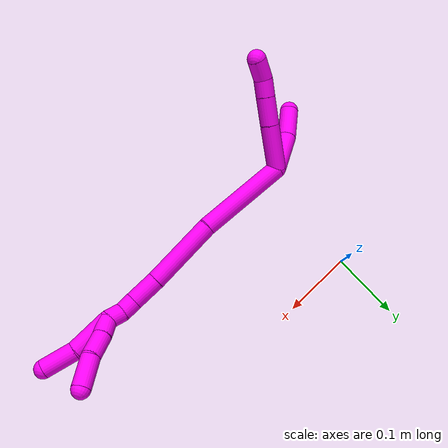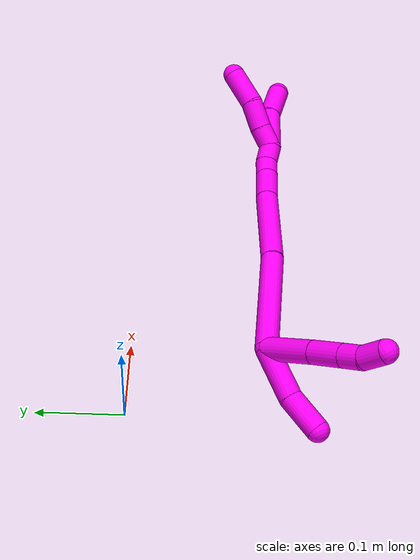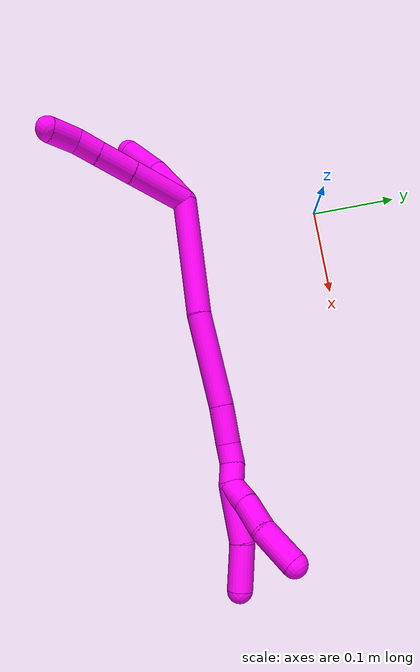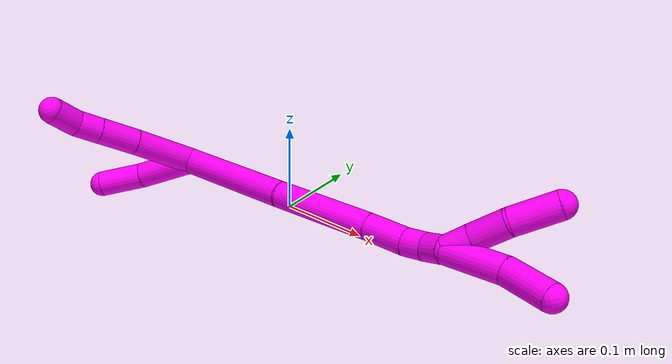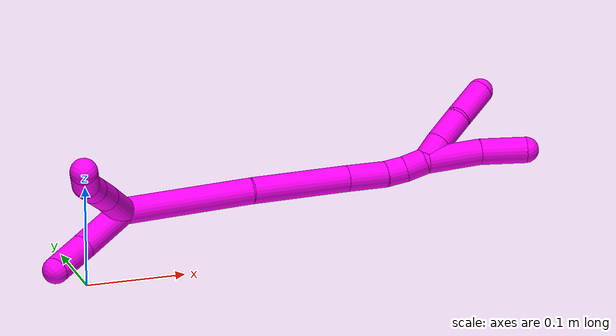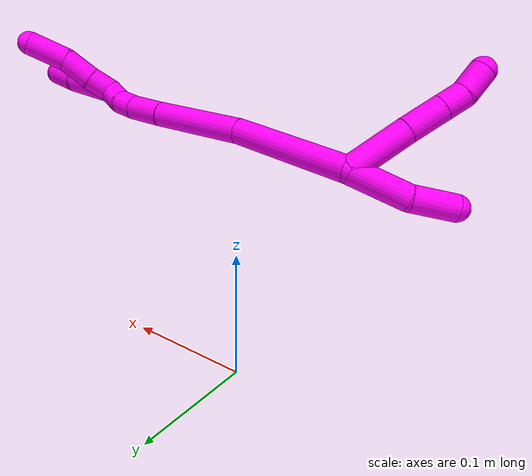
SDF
<sdf version="1.7">
 <world name="default">
  <model name="10">
   <static>0</static>
   <link name="10">
    <collision name="collision-cylinder-e_1_2_8">
     <pose>0.002518 -0.025758 -0.016513 2.14086 0.082107 0.149968</pose>
     <geometry><cylinder><radius>0.0125</radius><length>0.0614</length></cylinder></geometry>
     <surface>
      <friction><ode><mu>1.16</mu><mu2>1.16</mu2><slip1>0</slip1><slip2>0</slip2></ode></friction>
      <contact><ode><kp>1e+06</kp><kd>1</kd><max_vel>0</max_vel><min_depth>0.001</min_depth></ode></contact>
     </surface>
    </collision>
    <visual name="visual-cylinder-e_1_2_8">
     <pose>0.002518 -0.025758 -0.016513 2.14086 0.082107 0.149968</pose>
     <geometry><cylinder><radius>0.0125</radius><length>0.0614</length></cylinder></geometry>
     <material><ambient>1 0 0.964706 1</ambient></material>
    </visual>
    <collision name="collision-cylinder-e_2_8_9">
     <pose>0.006652 -0.066887 -0.043552 2.1713 0.086548 0.163909</pose>
     <geometry><cylinder><radius>0.0125</radius><length>0.0374</length></cylinder></geometry>
     <surface>
      <friction><ode><mu>1.16</mu><mu2>1.16</mu2><slip1>0</slip1><slip2>0</slip2></ode></friction>
      <contact><ode><kp>1e+06</kp><kd>1</kd><max_vel>0</max_vel><min_depth>0.001</min_depth></ode></contact>
     </surface>
    </collision>
    <visual name="visual-cylinder-e_2_8_9">
     <pose>0.006652 -0.066887 -0.043552 2.1713 0.086548 0.163909</pose>
     <geometry><cylinder><radius>0.0125</radius><length>0.0374</length></cylinder></geometry>
     <material><ambient>1 0 0.964706 1</ambient></material>
    </visual>
    <collision name="collision-cylinder-e_3_9_10">
     <pose>0.009205 -0.091829 -0.060703 2.17617 0.080273 0.152958</pose>
     <geometry><cylinder><radius>0.0125</radius><length>0.023354</length></cylinder></geometry>
     <surface>
      <friction><ode><mu>1.16</mu><mu2>1.16</mu2><slip1>0</slip1><slip2>0</slip2></ode></friction>
      <contact><ode><kp>1e+06</kp><kd>1</kd><max_vel>0</max_vel><min_depth>0.001</min_depth></ode></contact>
     </surface>
    </collision>
    <visual name="visual-cylinder-e_3_9_10">
     <pose>0.009205 -0.091829 -0.060703 2.17617 0.080273 0.152958</pose>
     <geometry><cylinder><radius>0.0125</radius><length>0.023354</length></cylinder></geometry>
     <material><ambient>1 0 0.964706 1</ambient></material>
    </visual>
    <collision name="collision-cylinder-e_4_10_6">
     <pose>0.011786 -0.114673 -0.071196 1.85445 0.118436 0.157749</pose>
     <geometry><cylinder><radius>0.0125</radius><length>0.027846</length></cylinder></geometry>
     <surface>
      <friction><ode><mu>1.16</mu><mu2>1.16</mu2><slip1>0</slip1><slip2>0</slip2></ode></friction>
      <contact><ode><kp>1e+06</kp><kd>1</kd><max_vel>0</max_vel><min_depth>0.001</min_depth></ode></contact>
     </surface>
    </collision>
    <visual name="visual-cylinder-e_4_10_6">
     <pose>0.011786 -0.114673 -0.071196 1.85445 0.118436 0.157749</pose>
     <geometry><cylinder><radius>0.0125</radius><length>0.027846</length></cylinder></geometry>
     <material><ambient>1 0 0.964706 1</ambient></material>
    </visual>
    <collision name="collision-cylinder-e_1_2_11">
     <pose>0.000666 0.000795 -0.028468 -3.11366 0.023391 -1.39433</pose>
     <geometry><cylinder><radius>0.0125</radius><length>0.056974</length></cylinder></geometry>
     <surface>
      <friction><ode><mu>1.16</mu><mu2>1.16</mu2><slip1>0</slip1><slip2>0</slip2></ode></friction>
      <contact><ode><kp>1e+06</kp><kd>1</kd><max_vel>0</max_vel><min_depth>0.001</min_depth></ode></contact>
     </surface>
    </collision>
    <visual name="visual-cylinder-e_1_2_11">
     <pose>0.000666 0.000795 -0.028468 -3.11366 0.023391 -1.39433</pose>
     <geometry><cylinder><radius>0.0125</radius><length>0.056974</length></cylinder></geometry>
     <material><ambient>1 0 0.964706 1</ambient></material>
    </visual>
    <collision name="collision-cylinder-e_2_11_5">
     <pose>0.004106 -0.002744 -0.077825 2.93698 0.129302 1.12525</pose>
     <geometry><cylinder><radius>0.0125</radius><length>0.043026</length></cylinder></geometry>
     <surface>
      <friction><ode><mu>1.16</mu><mu2>1.16</mu2><slip1>0</slip1><slip2>0</slip2></ode></friction>
      <contact><ode><kp>1e+06</kp><kd>1</kd><max_vel>0</max_vel><min_depth>0.001</min_depth></ode></contact>
     </surface>
    </collision>
    <visual name="visual-cylinder-e_2_11_5">
     <pose>0.004106 -0.002744 -0.077825 2.93698 0.129302 1.12525</pose>
     <geometry><cylinder><radius>0.0125</radius><length>0.043026</length></cylinder></geometry>
     <material><ambient>1 0 0.964706 1</ambient></material>
    </visual>
    <collision name="collision-cylinder-e_1_2_12">
     <pose>0.034634 -0.000143 0.0508 0.002812 0.598389 0.000867</pose>
     <geometry><cylinder><radius>0.0125</radius><length>0.122967</length></cylinder></geometry>
     <surface>
      <friction><ode><mu>1.16</mu><mu2>1.16</mu2><slip1>0</slip1><slip2>0</slip2></ode></friction>
      <contact><ode><kp>1e+06</kp><kd>1</kd><max_vel>0</max_vel><min_depth>0.001</min_depth></ode></contact>
     </surface>
    </collision>
    <visual name="visual-cylinder-e_1_2_12">
     <pose>0.034634 -0.000143 0.0508 0.002812 0.598389 0.000867</pose>
     <geometry><cylinder><radius>0.0125</radius><length>0.122967</length></cylinder></geometry>
     <material><ambient>1 0 0.964706 1</ambient></material>
    </visual>
    <collision name="collision-cylinder-e_2_12_13">
     <pose>0.093934 0.004991 0.142508 -0.128272 0.538938 -0.035472</pose>
     <geometry><cylinder><radius>0.0125</radius><length>0.096118</length></cylinder></geometry>
     <surface>
      <friction><ode><mu>1.16</mu><mu2>1.16</mu2><slip1>0</slip1><slip2>0</slip2></ode></friction>
      <contact><ode><kp>1e+06</kp><kd>1</kd><max_vel>0</max_vel><min_depth>0.001</min_depth></ode></contact>
     </surface>
    </collision>
    <visual name="visual-cylinder-e_2_12_13">
     <pose>0.093934 0.004991 0.142508 -0.128272 0.538938 -0.035472</pose>
     <geometry><cylinder><radius>0.0125</radius><length>0.096118</length></cylinder></geometry>
     <material><ambient>1 0 0.964706 1</ambient></material>
    </visual>
    <collision name="collision-cylinder-e_3_13_14">
     <pose>0.129371 0.011756 0.199479 -0.092462 0.588768 -0.028052</pose>
     <geometry><cylinder><radius>0.0125</radius><length>0.038795</length></cylinder></geometry>
     <surface>
      <friction><ode><mu>1.16</mu><mu2>1.16</mu2><slip1>0</slip1><slip2>0</slip2></ode></friction>
      <contact><ode><kp>1e+06</kp><kd>1</kd><max_vel>0</max_vel><min_depth>0.001</min_depth></ode></contact>
     </surface>
    </collision>
    <visual name="visual-cylinder-e_3_13_14">
     <pose>0.129371 0.011756 0.199479 -0.092462 0.588768 -0.028052</pose>
     <geometry><cylinder><radius>0.0125</radius><length>0.038795</length></cylinder></geometry>
     <material><ambient>1 0 0.964706 1</ambient></material>
    </visual>
    <collision name="collision-cylinder-e_4_14_15">
     <pose>0.145015 0.013041 0.224587 0.022636 0.493931 0.005707</pose>
     <geometry><cylinder><radius>0.0125</radius><length>0.020551</length></cylinder></geometry>
     <surface>
      <friction><ode><mu>1.16</mu><mu2>1.16</mu2><slip1>0</slip1><slip2>0</slip2></ode></friction>
      <contact><ode><kp>1e+06</kp><kd>1</kd><max_vel>0</max_vel><min_depth>0.001</min_depth></ode></contact>
     </surface>
    </collision>
    <visual name="visual-cylinder-e_4_14_15">
     <pose>0.145015 0.013041 0.224587 0.022636 0.493931 0.005707</pose>
     <geometry><cylinder><radius>0.0125</radius><length>0.020551</length></cylinder></geometry>
     <material><ambient>1 0 0.964706 1</ambient></material>
    </visual>
    <collision name="collision-cylinder-e_5_15_1">
     <pose>0.155483 0.009247 0.242123 0.399931 0.545613 0.113288</pose>
     <geometry><cylinder><radius>0.0125</radius><length>0.021569</length></cylinder></geometry>
     <surface>
      <friction><ode><mu>1.16</mu><mu2>1.16</mu2><slip1>0</slip1><slip2>0</slip2></ode></friction>
      <contact><ode><kp>1e+06</kp><kd>1</kd><max_vel>0</max_vel><min_depth>0.001</min_depth></ode></contact>
     </surface>
    </collision>
    <visual name="visual-cylinder-e_5_15_1">
     <pose>0.155483 0.009247 0.242123 0.399931 0.545613 0.113288</pose>
     <geometry><cylinder><radius>0.0125</radius><length>0.021569</length></cylinder></geometry>
     <material><ambient>1 0 0.964706 1</ambient></material>
    </visual>
    <collision name="collision-cylinder-e_1_1_16">
     <pose>0.159017 0.003886 0.262656 0.146117 -0.167847 -0.012313</pose>
     <geometry><cylinder><radius>0.0125</radius><length>0.02469</length></cylinder></geometry>
     <surface>
      <friction><ode><mu>1.16</mu><mu2>1.16</mu2><slip1>0</slip1><slip2>0</slip2></ode></friction>
      <contact><ode><kp>1e+06</kp><kd>1</kd><max_vel>0</max_vel><min_depth>0.001</min_depth></ode></contact>
     </surface>
    </collision>
    <visual name="visual-cylinder-e_1_1_16">
     <pose>0.159017 0.003886 0.262656 0.146117 -0.167847 -0.012313</pose>
     <geometry><cylinder><radius>0.0125</radius><length>0.02469</length></cylinder></geometry>
     <material><ambient>1 0 0.964706 1</ambient></material>
    </visual>
    <collision name="collision-cylinder-e_2_16_17">
     <pose>0.155858 -0.001902 0.290744 0.245211 -0.066226 -0.008164</pose>
     <geometry><cylinder><radius>0.0125</radius><length>0.033156</length></cylinder></geometry>
     <surface>
      <friction><ode><mu>1.16</mu><mu2>1.16</mu2><slip1>0</slip1><slip2>0</slip2></ode></friction>
      <contact><ode><kp>1e+06</kp><kd>1</kd><max_vel>0</max_vel><min_depth>0.001</min_depth></ode></contact>
     </surface>
    </collision>
    <visual name="visual-cylinder-e_2_16_17">
     <pose>0.155858 -0.001902 0.290744 0.245211 -0.066226 -0.008164</pose>
     <geometry><cylinder><radius>0.0125</radius><length>0.033156</length></cylinder></geometry>
     <material><ambient>1 0 0.964706 1</ambient></material>
    </visual>
    <collision name="collision-cylinder-e_3_17_4">
     <pose>0.151911 -0.00616 0.327673 0.011604 -0.135613 -0.000788</pose>
     <geometry><cylinder><radius>0.0125</radius><length>0.042154</length></cylinder></geometry>
     <surface>
      <friction><ode><mu>1.16</mu><mu2>1.16</mu2><slip1>0</slip1><slip2>0</slip2></ode></friction>
      <contact><ode><kp>1e+06</kp><kd>1</kd><max_vel>0</max_vel><min_depth>0.001</min_depth></ode></contact>
     </surface>
    </collision>
    <visual name="visual-cylinder-e_3_17_4">
     <pose>0.151911 -0.00616 0.327673 0.011604 -0.135613 -0.000788</pose>
     <geometry><cylinder><radius>0.0125</radius><length>0.042154</length></cylinder></geometry>
     <material><ambient>1 0 0.964706 1</ambient></material>
    </visual>
    <collision name="collision-cylinder-e_1_1_18">
     <pose>0.175524 0.006798 0.274019 -0.048666 0.552398 -0.013797</pose>
     <geometry><cylinder><radius>0.0125</radius><length>0.055054</length></cylinder></geometry>
     <surface>
      <friction><ode><mu>1.16</mu><mu2>1.16</mu2><slip1>0</slip1><slip2>0</slip2></ode></friction>
      <contact><ode><kp>1e+06</kp><kd>1</kd><max_vel>0</max_vel><min_depth>0.001</min_depth></ode></contact>
     </surface>
    </collision>
    <visual name="visual-cylinder-e_1_1_18">
     <pose>0.175524 0.006798 0.274019 -0.048666 0.552398 -0.013797</pose>
     <geometry><cylinder><radius>0.0125</radius><length>0.055054</length></cylinder></geometry>
     <material><ambient>1 0 0.964706 1</ambient></material>
    </visual>
    <collision name="collision-cylinder-e_2_18_3">
     <pose>0.205835 0.006808 0.313298 0.07107 0.783939 0.029388</pose>
     <geometry><cylinder><radius>0.0125</radius><length>0.044946</length></cylinder></geometry>
     <surface>
      <friction><ode><mu>1.16</mu><mu2>1.16</mu2><slip1>0</slip1><slip2>0</slip2></ode></friction>
      <contact><ode><kp>1e+06</kp><kd>1</kd><max_vel>0</max_vel><min_depth>0.001</min_depth></ode></contact>
     </surface>
    </collision>
    <visual name="visual-cylinder-e_2_18_3">
     <pose>0.205835 0.006808 0.313298 0.07107 0.783939 0.029388</pose>
     <geometry><cylinder><radius>0.0125</radius><length>0.044946</length></cylinder></geometry>
     <material><ambient>1 0 0.964706 1</ambient></material>
    </visual>
    <collision name="collision-sphere-3">
     <pose>0.221703 0.005677 0.329172 0 -0 0</pose>
     <geometry><sphere><radius>0.0125</radius></sphere></geometry>
     <surface>
      <friction><ode><mu>1.16</mu><mu2>1.16</mu2><slip1>0</slip1><slip2>0</slip2></ode></friction>
      <contact><ode><kp>1e+06</kp><kd>1</kd><max_vel>0</max_vel><min_depth>0.001</min_depth></ode></contact>
     </surface>
    </collision>
    <visual name="visual-sphere-3">
     <pose>0.221703 0.005677 0.329172 0 -0 0</pose>
     <geometry><sphere><radius>0.0125</radius></sphere></geometry>
     <material><ambient>1 0 0.964706 1</ambient></material>
    </visual>
    <collision name="collision-sphere-11">
     <pose>0.001333 0.001591 -0.056936 0 -0 0</pose>
     <geometry><sphere><radius>0.0125</radius></sphere></geometry>
     <surface>
      <friction><ode><mu>1.16</mu><mu2>1.16</mu2><slip1>0</slip1><slip2>0</slip2></ode></friction>
      <contact><ode><kp>1e+06</kp><kd>1</kd><max_vel>0</max_vel><min_depth>0.001</min_depth></ode></contact>
     </surface>
    </collision>
    <visual name="visual-sphere-11">
     <pose>0.001333 0.001591 -0.056936 0 -0 0</pose>
     <geometry><sphere><radius>0.0125</radius></sphere></geometry>
     <material><ambient>1 0 0.964706 1</ambient></material>
    </visual>
    <collision name="collision-sphere-6">
     <pose>0.013431 -0.127946 -0.075065 0 -0 0</pose>
     <geometry><sphere><radius>0.0125</radius></sphere></geometry>
     <surface>
      <friction><ode><mu>1.16</mu><mu2>1.16</mu2><slip1>0</slip1><slip2>0</slip2></ode></friction>
      <contact><ode><kp>1e+06</kp><kd>1</kd><max_vel>0</max_vel><min_depth>0.001</min_depth></ode></contact>
     </surface>
    </collision>
    <visual name="visual-sphere-6">
     <pose>0.013431 -0.127946 -0.075065 0 -0 0</pose>
     <geometry><sphere><radius>0.0125</radius></sphere></geometry>
     <material><ambient>1 0 0.964706 1</ambient></material>
    </visual>
    <collision name="collision-sphere-10">
     <pose>0.010141 -0.1014 -0.067327 0 -0 0</pose>
     <geometry><sphere><radius>0.0125</radius></sphere></geometry>
     <surface>
      <friction><ode><mu>1.16</mu><mu2>1.16</mu2><slip1>0</slip1><slip2>0</slip2></ode></friction>
      <contact><ode><kp>1e+06</kp><kd>1</kd><max_vel>0</max_vel><min_depth>0.001</min_depth></ode></contact>
     </surface>
    </collision>
    <visual name="visual-sphere-10">
     <pose>0.010141 -0.1014 -0.067327 0 -0 0</pose>
     <geometry><sphere><radius>0.0125</radius></sphere></geometry>
     <material><ambient>1 0 0.964706 1</ambient></material>
    </visual>
    <collision name="collision-sphere-9">
     <pose>0.008269 -0.082258 -0.054079 0 -0 0</pose>
     <geometry><sphere><radius>0.0125</radius></sphere></geometry>
     <surface>
      <friction><ode><mu>1.16</mu><mu2>1.16</mu2><slip1>0</slip1><slip2>0</slip2></ode></friction>
      <contact><ode><kp>1e+06</kp><kd>1</kd><max_vel>0</max_vel><min_depth>0.001</min_depth></ode></contact>
     </surface>
    </collision>
    <visual name="visual-sphere-9">
     <pose>0.008269 -0.082258 -0.054079 0 -0 0</pose>
     <geometry><sphere><radius>0.0125</radius></sphere></geometry>
     <material><ambient>1 0 0.964706 1</ambient></material>
    </visual>
    <collision name="collision-sphere-2">
     <geometry><sphere><radius>0.0125</radius></sphere></geometry>
     <surface>
      <friction><ode><mu>1.16</mu><mu2>1.16</mu2><slip1>0</slip1><slip2>0</slip2></ode></friction>
      <contact><ode><kp>1e+06</kp><kd>1</kd><max_vel>0</max_vel><min_depth>0.001</min_depth></ode></contact>
     </surface>
    </collision>
    <visual name="visual-sphere-2">
     <geometry><sphere><radius>0.0125</radius></sphere></geometry>
     <material><ambient>1 0 0.964706 1</ambient></material>
    </visual>
    <collision name="collision-sphere-8">
     <pose>0.005036 -0.051517 -0.033025 0 -0 0</pose>
     <geometry><sphere><radius>0.0125</radius></sphere></geometry>
     <surface>
      <friction><ode><mu>1.16</mu><mu2>1.16</mu2><slip1>0</slip1><slip2>0</slip2></ode></friction>
      <contact><ode><kp>1e+06</kp><kd>1</kd><max_vel>0</max_vel><min_depth>0.001</min_depth></ode></contact>
     </surface>
    </collision>
    <visual name="visual-sphere-8">
     <pose>0.005036 -0.051517 -0.033025 0 -0 0</pose>
     <geometry><sphere><radius>0.0125</radius></sphere></geometry>
     <material><ambient>1 0 0.964706 1</ambient></material>
    </visual>
    <collision name="collision-sphere-5">
     <pose>0.00688 -0.007079 -0.098713 0 -0 0</pose>
     <geometry><sphere><radius>0.0125</radius></sphere></geometry>
     <surface>
      <friction><ode><mu>1.16</mu><mu2>1.16</mu2><slip1>0</slip1><slip2>0</slip2></ode></friction>
      <contact><ode><kp>1e+06</kp><kd>1</kd><max_vel>0</max_vel><min_depth>0.001</min_depth></ode></contact>
     </surface>
    </collision>
    <visual name="visual-sphere-5">
     <pose>0.00688 -0.007079 -0.098713 0 -0 0</pose>
     <geometry><sphere><radius>0.0125</radius></sphere></geometry>
     <material><ambient>1 0 0.964706 1</ambient></material>
    </visual>
    <collision name="collision-sphere-12">
     <pose>0.069269 -0.000286 0.101601 0 -0 0</pose>
     <geometry><sphere><radius>0.0125</radius></sphere></geometry>
     <surface>
      <friction><ode><mu>1.16</mu><mu2>1.16</mu2><slip1>0</slip1><slip2>0</slip2></ode></friction>
      <contact><ode><kp>1e+06</kp><kd>1</kd><max_vel>0</max_vel><min_depth>0.001</min_depth></ode></contact>
     </surface>
    </collision>
    <visual name="visual-sphere-12">
     <pose>0.069269 -0.000286 0.101601 0 -0 0</pose>
     <geometry><sphere><radius>0.0125</radius></sphere></geometry>
     <material><ambient>1 0 0.964706 1</ambient></material>
    </visual>
    <collision name="collision-sphere-13">
     <pose>0.118599 0.010267 0.183416 0 -0 0</pose>
     <geometry><sphere><radius>0.0125</radius></sphere></geometry>
     <surface>
      <friction><ode><mu>1.16</mu><mu2>1.16</mu2><slip1>0</slip1><slip2>0</slip2></ode></friction>
      <contact><ode><kp>1e+06</kp><kd>1</kd><max_vel>0</max_vel><min_depth>0.001</min_depth></ode></contact>
     </surface>
    </collision>
    <visual name="visual-sphere-13">
     <pose>0.118599 0.010267 0.183416 0 -0 0</pose>
     <geometry><sphere><radius>0.0125</radius></sphere></geometry>
     <material><ambient>1 0 0.964706 1</ambient></material>
    </visual>
    <collision name="collision-sphere-14">
     <pose>0.140143 0.013246 0.215542 0 -0 0</pose>
     <geometry><sphere><radius>0.0125</radius></sphere></geometry>
     <surface>
      <friction><ode><mu>1.16</mu><mu2>1.16</mu2><slip1>0</slip1><slip2>0</slip2></ode></friction>
      <contact><ode><kp>1e+06</kp><kd>1</kd><max_vel>0</max_vel><min_depth>0.001</min_depth></ode></contact>
     </surface>
    </collision>
    <visual name="visual-sphere-14">
     <pose>0.140143 0.013246 0.215542 0 -0 0</pose>
     <geometry><sphere><radius>0.0125</radius></sphere></geometry>
     <material><ambient>1 0 0.964706 1</ambient></material>
    </visual>
    <collision name="collision-sphere-15">
     <pose>0.149886 0.012836 0.233632 0 -0 0</pose>
     <geometry><sphere><radius>0.0125</radius></sphere></geometry>
     <surface>
      <friction><ode><mu>1.16</mu><mu2>1.16</mu2><slip1>0</slip1><slip2>0</slip2></ode></friction>
      <contact><ode><kp>1e+06</kp><kd>1</kd><max_vel>0</max_vel><min_depth>0.001</min_depth></ode></contact>
     </surface>
    </collision>
    <visual name="visual-sphere-15">
     <pose>0.149886 0.012836 0.233632 0 -0 0</pose>
     <geometry><sphere><radius>0.0125</radius></sphere></geometry>
     <material><ambient>1 0 0.964706 1</ambient></material>
    </visual>
    <collision name="collision-sphere-1">
     <pose>0.161079 0.005658 0.250614 0 -0 0</pose>
     <geometry><sphere><radius>0.0125</radius></sphere></geometry>
     <surface>
      <friction><ode><mu>1.16</mu><mu2>1.16</mu2><slip1>0</slip1><slip2>0</slip2></ode></friction>
      <contact><ode><kp>1e+06</kp><kd>1</kd><max_vel>0</max_vel><min_depth>0.001</min_depth></ode></contact>
     </surface>
    </collision>
    <visual name="visual-sphere-1">
     <pose>0.161079 0.005658 0.250614 0 -0 0</pose>
     <geometry><sphere><radius>0.0125</radius></sphere></geometry>
     <material><ambient>1 0 0.964706 1</ambient></material>
    </visual>
    <collision name="collision-sphere-18">
     <pose>0.189968 0.007938 0.297424 0 -0 0</pose>
     <geometry><sphere><radius>0.0125</radius></sphere></geometry>
     <surface>
      <friction><ode><mu>1.16</mu><mu2>1.16</mu2><slip1>0</slip1><slip2>0</slip2></ode></friction>
      <contact><ode><kp>1e+06</kp><kd>1</kd><max_vel>0</max_vel><min_depth>0.001</min_depth></ode></contact>
     </surface>
    </collision>
    <visual name="visual-sphere-18">
     <pose>0.189968 0.007938 0.297424 0 -0 0</pose>
     <geometry><sphere><radius>0.0125</radius></sphere></geometry>
     <material><ambient>1 0 0.964706 1</ambient></material>
    </visual>
    <collision name="collision-sphere-16">
     <pose>0.156955 0.002113 0.274698 0 -0 0</pose>
     <geometry><sphere><radius>0.0125</radius></sphere></geometry>
     <surface>
      <friction><ode><mu>1.16</mu><mu2>1.16</mu2><slip1>0</slip1><slip2>0</slip2></ode></friction>
      <contact><ode><kp>1e+06</kp><kd>1</kd><max_vel>0</max_vel><min_depth>0.001</min_depth></ode></contact>
     </surface>
    </collision>
    <visual name="visual-sphere-16">
     <pose>0.156955 0.002113 0.274698 0 -0 0</pose>
     <geometry><sphere><radius>0.0125</radius></sphere></geometry>
     <material><ambient>1 0 0.964706 1</ambient></material>
    </visual>
    <collision name="collision-sphere-17">
     <pose>0.15476 -0.005918 0.306791 0 -0 0</pose>
     <geometry><sphere><radius>0.0125</radius></sphere></geometry>
     <surface>
      <friction><ode><mu>1.16</mu><mu2>1.16</mu2><slip1>0</slip1><slip2>0</slip2></ode></friction>
      <contact><ode><kp>1e+06</kp><kd>1</kd><max_vel>0</max_vel><min_depth>0.001</min_depth></ode></contact>
     </surface>
    </collision>
    <visual name="visual-sphere-17">
     <pose>0.15476 -0.005918 0.306791 0 -0 0</pose>
     <geometry><sphere><radius>0.0125</radius></sphere></geometry>
     <material><ambient>1 0 0.964706 1</ambient></material>
    </visual>
    <collision name="collision-sphere-4">
     <pose>0.149061 -0.006403 0.348555 0 -0 0</pose>
     <geometry><sphere><radius>0.0125</radius></sphere></geometry>
     <surface>
      <friction><ode><mu>1.16</mu><mu2>1.16</mu2><slip1>0</slip1><slip2>0</slip2></ode></friction>
      <contact><ode><kp>1e+06</kp><kd>1</kd><max_vel>0</max_vel><min_depth>0.001</min_depth></ode></contact>
     </surface>
    </collision>
    <visual name="visual-sphere-4">
     <pose>0.149061 -0.006403 0.348555 0 -0 0</pose>
     <geometry><sphere><radius>0.0125</radius></sphere></geometry>
     <material><ambient>1 0 0.964706 1</ambient></material>
    </visual>
    <inertial>
     <pose>0.080285 -0.010206 0.11415 0 -0 0</pose>
     <mass>0.75</mass>
     <inertia>
      <ixx>0.000291</ixx>
      <ixy>0</ixy>
      <ixz>0</ixz>
      <iyy>0.000245</iyy>
      <iyz>0</iyz>
      <izz>-0.000111</izz>
     </inertia>
    </inertial>
   </link>
   <pose>-0.004187 -0.151109 0.121708 -1.16808 0.408674 -0.917858</pose>
  </model>
 </world>
</sdf>
